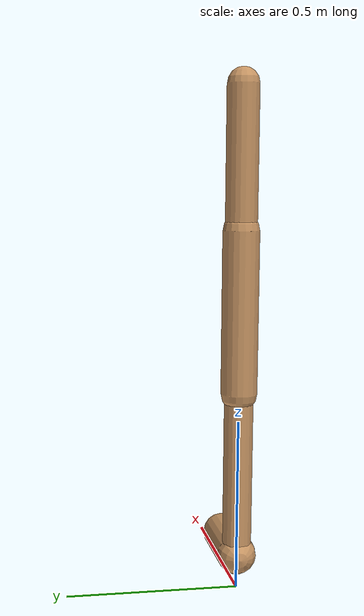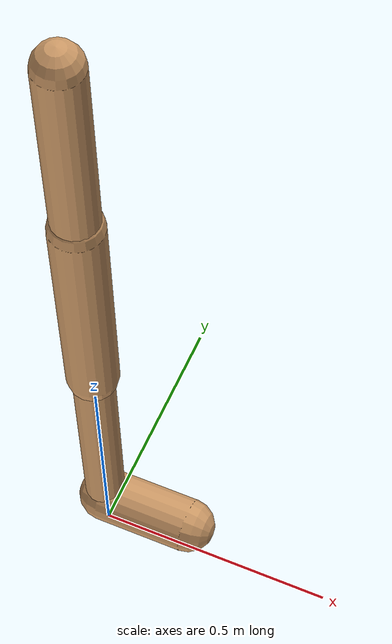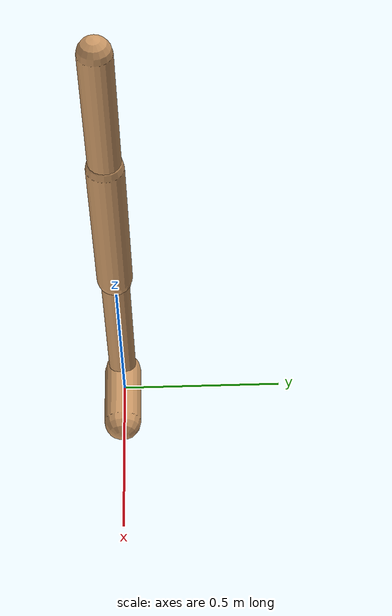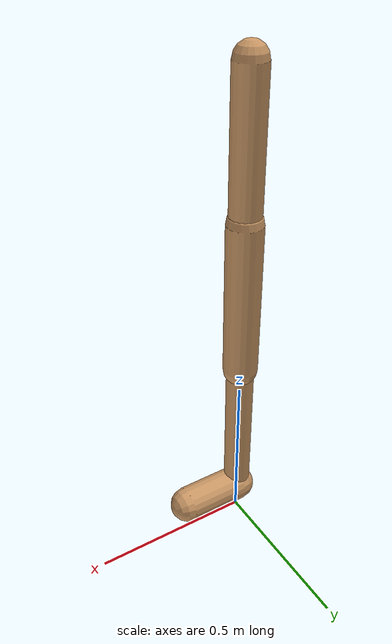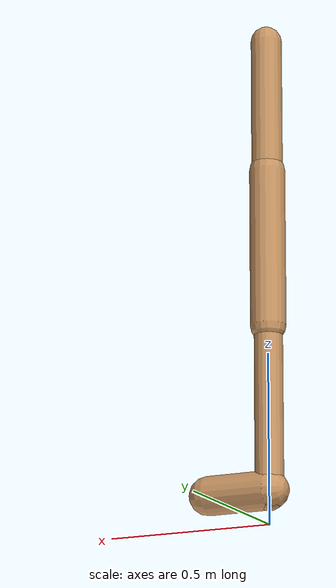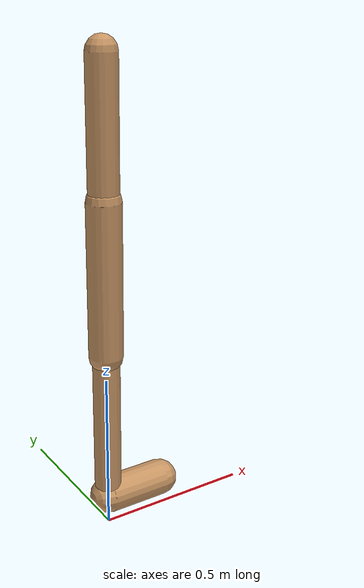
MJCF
<mujoco model="walker2d">
  <compiler angle="degree" coordinate="global" inertiafromgeom="true" />
  <default>
    <joint armature="0.01" damping=".1" limited="true" />
    <geom conaffinity="0" condim="3" contype="1" density="1000" friction="0.8 .1 .1" rgba="0.8 0.6 .4 1" />
  </default>
  <option integrator="RK4" timestep="0.002" />
  <worldbody>

    <body name="torso" pos="0 0 0.034411696016819544">
      <joint armature="0" axis="1 0 0" damping="0" limited="false" name="ignorex" pos="0 0 0" stiffness="0" type="slide" />
      <joint armature="0" axis="0 0 1" damping="0" limited="false" name="ignorez" pos="0 0 0" ref="1.25" stiffness="0" type="slide" />
      <joint armature="0" axis="0 1 0" damping="0" limited="false" name="ignorey" pos="0 0 0" stiffness="0" type="hinge" />
      <geom fromto="0 0 1.45 0 0 1.05" name="torso_geom" size="0.04550258387703811" type="capsule" />
      <body name="thigh">
        <joint axis="0 -1 0" name="thigh_joint" pos="0 0 1.05" range="-150 0" type="hinge" />
        <geom fromto="0.0 0.0 1.05 0.0 0.0 0.5836997229394012" name="thigh_geom" size="0.05225013049307001" type="capsule" />
        <body name="leg" pos="0.0 0.0 -0.016300277060598778">
          <joint axis="0 -1 0" name="leg_joint" pos="0 0 0.6" range="-150 0" type="hinge" />
          <geom fromto="0.0 0.0 0.6 0.0 0.0 0.08188858104377919" name="leg_geom" size="0.041800104394456" type="capsule" />
          <body name="foot" pos="0.0 0.0 -0.018111418956220815">
            <joint axis="0 -1 0" name="foot_joint" pos="0 0 0.1" range="-45 45" type="hinge" />
            <geom fromto="0.0 0.0 0.1 0.1901059039224507 0.0 0.1" name="foot_geom" size="0.05706054489157616" type="capsule" />
          </body>
        </body>
      </body>

      <body name="thigh_left">
        <joint axis="0 -1 0" name="thigh_left_joint" pos="0 0 1.05" range="-150 0" type="hinge" />
        <geom fromto="0.0 0.0 1.05 0.0 0.0 0.5836997229394012" name="thigh_left_geom" rgba=".7 .3 .6 1" size="0.05225013049307001" type="capsule" />
        <body name="leg_left" pos="0.0 0.0 -0.016300277060598778">
          <joint axis="0 -1 0" name="leg_left_joint" pos="0 0 0.6" range="-150 0" type="hinge" />
          <geom fromto="0.0 0.0 0.6 0.0 0.0 0.08188858104377919" name="leg_left_geom" rgba=".7 .3 .6 1" size="0.041800104394456" type="capsule" />
          <body name="foot_left" pos="0.0 0.0 -0.018111418956220815">
            <joint axis="0 -1 0" name="foot_left_joint" pos="0 0 0.1" range="-45 45" type="hinge" />
            <geom fromto="0.0 0.0 0.1 0.1901059039224507 0.0 0.1" name="foot_left_geom" rgba=".7 .3 .6 1" size="0.05706054489157616" type="capsule" />
          </body>
        </body>
      </body>
    </body>
  </worldbody>
  <actuator>

    <motor ctrllimited="true" ctrlrange="-1.0 1.0" gear="100" joint="thigh_joint" />
    <motor ctrllimited="true" ctrlrange="-1.0 1.0" gear="100" joint="leg_joint" />
    <motor ctrllimited="true" ctrlrange="-1.0 1.0" gear="100" joint="foot_joint" />
    <motor ctrllimited="true" ctrlrange="-1.0 1.0" gear="100" joint="thigh_left_joint" />
    <motor ctrllimited="true" ctrlrange="-1.0 1.0" gear="100" joint="leg_left_joint" />
    <motor ctrllimited="true" ctrlrange="-1.0 1.0" gear="100" joint="foot_left_joint" />

  </actuator>
</mujoco>
